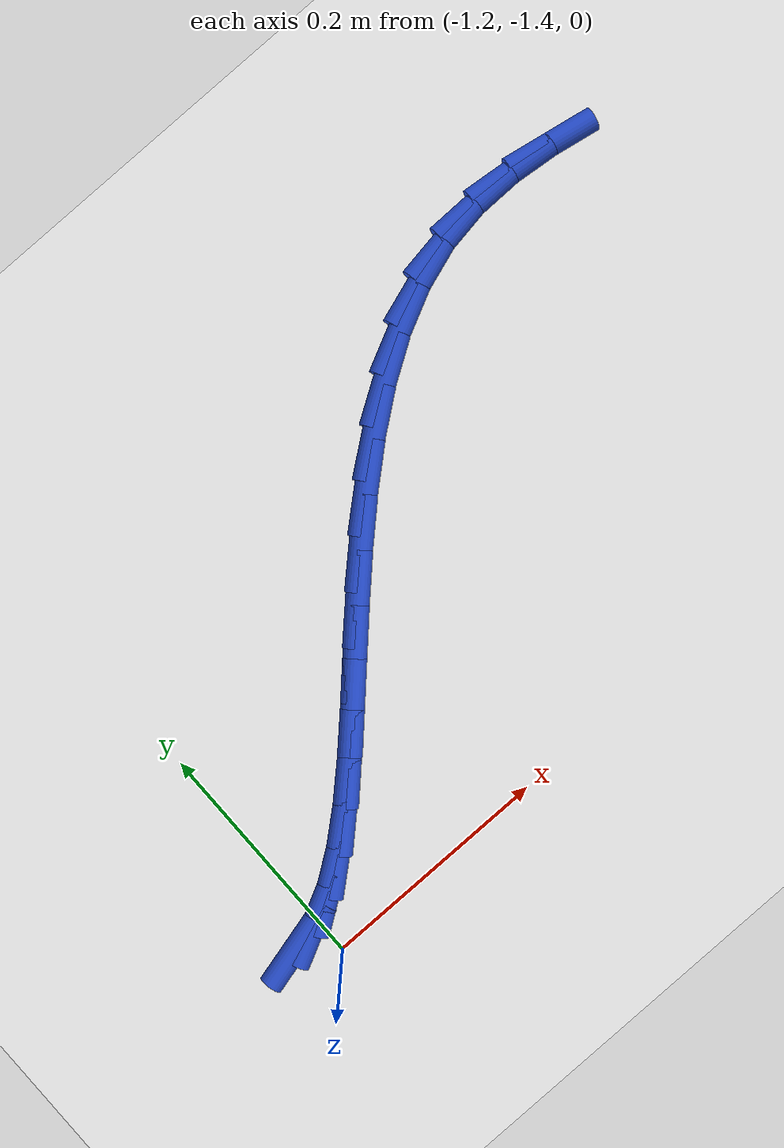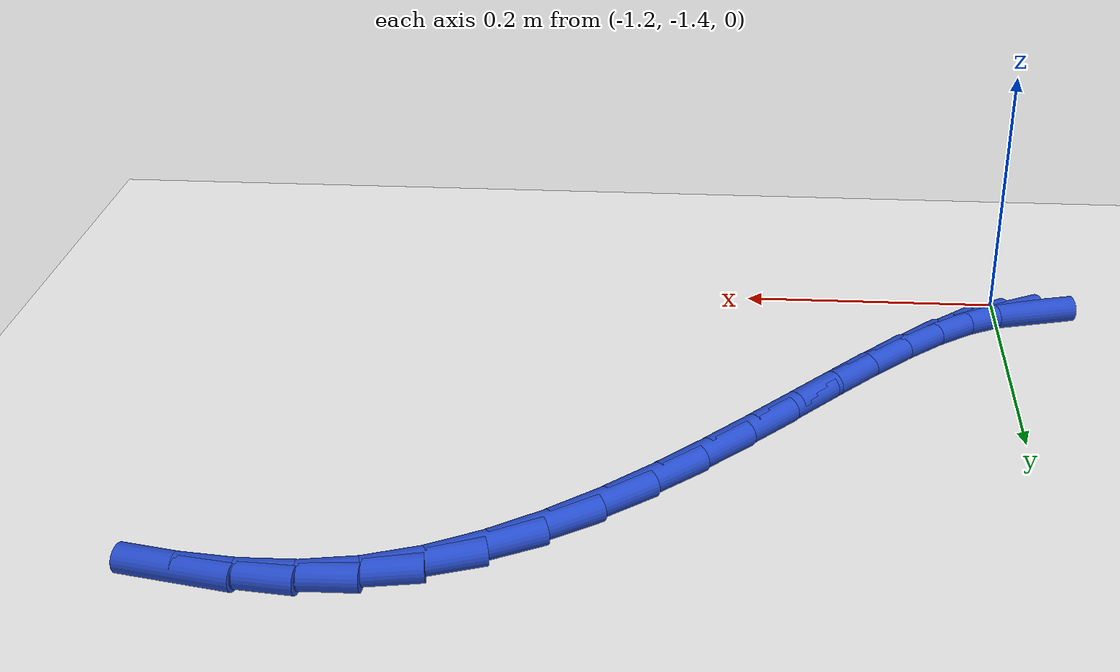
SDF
<sdf version="1.6">
 <world name="default">
  <model name="ground_plane">
   <static>1</static>
   <link name="link">
    <collision name="collision">
     <geometry><plane><normal>0 0 1</normal><size>100 100</size></plane></geometry>
     <surface><friction><ode><mu>100</mu><mu2>50</mu2></ode></friction></surface>
    </collision>
    <visual name="visual">
     <cast_shadows>0</cast_shadows>
     <geometry><plane><normal>0 0 1</normal><size>100 100</size></plane></geometry>
     <material>
      <script><uri>file://media/materials/scripts/gazebo.material</uri><name>Gazebo/WhiteGlow</name></script>
     </material>
    </visual>
   </link>
  </model>
  <model name="line">
   <link name="link_163">
    <pose>-1.2224894369334516 -1.3725179280706419 0.01 0 1.57 0.25270138778421414</pose>
    <collision name="collision">
     <geometry><cylinder><radius>0.01</radius><length>0.08</length></cylinder></geometry>
    </collision>
    <visual name="visual">
     <material>
      <script><name>Gazebo/Blue</name><uri>file://media/materials/scripts/gazebo.material</uri></script>
     </material>
     <geometry><cylinder><radius>0.01</radius><length>0.08</length></cylinder></geometry>
    </visual>
   </link>
   <link name="link_164">
    <pose>-1.1984580679133814 -1.3663125135648566 0.01 0 1.57 0.4697316657300928</pose>
    <collision name="collision">
     <geometry><cylinder><radius>0.01</radius><length>0.08</length></cylinder></geometry>
    </collision>
    <visual name="visual">
     <material>
      <script><name>Gazebo/Blue</name><uri>file://media/materials/scripts/gazebo.material</uri></script>
     </material>
     <geometry><cylinder><radius>0.01</radius><length>0.08</length></cylinder></geometry>
    </visual>
   </link>
   <link name="link_165">
    <pose>-1.173454476284148 -1.3536199810830771 0.01 0 1.57 0.6124845740880773</pose>
    <collision name="collision">
     <geometry><cylinder><radius>0.01</radius><length>0.08</length></cylinder></geometry>
    </collision>
    <visual name="visual">
     <material>
      <script><name>Gazebo/Blue</name><uri>file://media/materials/scripts/gazebo.material</uri></script>
     </material>
     <geometry><cylinder><radius>0.01</radius><length>0.08</length></cylinder></geometry>
    </visual>
   </link>
   <link name="link_166">
    <pose>-1.147478849339577 -1.335368893584501 0.01 0 1.57 0.7039708735063501</pose>
    <collision name="collision">
     <geometry><cylinder><radius>0.01</radius><length>0.08</length></cylinder></geometry>
    </collision>
    <visual name="visual">
     <material>
      <script><name>Gazebo/Blue</name><uri>file://media/materials/scripts/gazebo.material</uri></script>
     </material>
     <geometry><cylinder><radius>0.01</radius><length>0.08</length></cylinder></geometry>
    </visual>
   </link>
   <link name="link_167">
    <pose>-1.1205313743734928 -1.3124878140283245 0.01 0 1.57 0.7608785515708159</pose>
    <collision name="collision">
     <geometry><cylinder><radius>0.01</radius><length>0.08</length></cylinder></geometry>
    </collision>
    <visual name="visual">
     <material>
      <script><name>Gazebo/Blue</name><uri>file://media/materials/scripts/gazebo.material</uri></script>
     </material>
     <geometry><cylinder><radius>0.01</radius><length>0.08</length></cylinder></geometry>
    </visual>
   </link>
   <link name="link_168">
    <pose>-1.0926122386797203 -1.2859053053737455 0.01 0 1.57 0.7933773539155227</pose>
    <collision name="collision">
     <geometry><cylinder><radius>0.01</radius><length>0.08</length></cylinder></geometry>
    </collision>
    <visual name="visual">
     <material>
      <script><name>Gazebo/Blue</name><uri>file://media/materials/scripts/gazebo.material</uri></script>
     </material>
     <geometry><cylinder><radius>0.01</radius><length>0.08</length></cylinder></geometry>
    </visual>
   </link>
   <link name="link_169">
    <pose>-1.0637216295520837 -1.2565499305799588 0.01 0 1.57 0.8073034084556909</pose>
    <collision name="collision">
     <geometry><cylinder><radius>0.01</radius><length>0.08</length></cylinder></geometry>
    </collision>
    <visual name="visual">
     <material>
      <script><name>Gazebo/Blue</name><uri>file://media/materials/scripts/gazebo.material</uri></script>
     </material>
     <geometry><cylinder><radius>0.01</radius><length>0.08</length></cylinder></geometry>
    </visual>
   </link>
   <link name="link_170">
    <pose>-1.0338597342844094 -1.225350252606165 0.01 0 1.57 0.805767965545105</pose>
    <collision name="collision">
     <geometry><cylinder><radius>0.01</radius><length>0.08</length></cylinder></geometry>
    </collision>
    <visual name="visual">
     <material>
      <script><name>Gazebo/Blue</name><uri>file://media/materials/scripts/gazebo.material</uri></script>
     </material>
     <geometry><cylinder><radius>0.01</radius><length>0.08</length></cylinder></geometry>
    </visual>
   </link>
   <link name="link_171">
    <pose>-1.003026740170521 -1.1932348344115584 0.01 0 1.57 0.790071985462082</pose>
    <collision name="collision">
     <geometry><cylinder><radius>0.01</radius><length>0.08</length></cylinder></geometry>
    </collision>
    <visual name="visual">
     <material>
      <script><name>Gazebo/Blue</name><uri>file://media/materials/scripts/gazebo.material</uri></script>
     </material>
     <geometry><cylinder><radius>0.01</radius><length>0.08</length></cylinder></geometry>
    </visual>
   </link>
   <link name="link_172">
    <pose>-0.971222834504244 -1.1611322389553373 0.01 0 1.57 0.7601685296400821</pose>
    <collision name="collision">
     <geometry><cylinder><radius>0.01</radius><length>0.08</length></cylinder></geometry>
    </collision>
    <visual name="visual">
     <material>
      <script><name>Gazebo/Blue</name><uri>file://media/materials/scripts/gazebo.material</uri></script>
     </material>
     <geometry><cylinder><radius>0.01</radius><length>0.08</length></cylinder></geometry>
    </visual>
   </link>
   <link name="link_173">
    <pose>-0.9384482045794017 -1.1299710291966967 0.01 0 1.57 0.7148593283510855</pose>
    <collision name="collision">
     <geometry><cylinder><radius>0.01</radius><length>0.08</length></cylinder></geometry>
    </collision>
    <visual name="visual">
     <material>
      <script><name>Gazebo/Blue</name><uri>file://media/materials/scripts/gazebo.material</uri></script>
     </material>
     <geometry><cylinder><radius>0.01</radius><length>0.08</length></cylinder></geometry>
    </visual>
   </link>
   <link name="link_174">
    <pose>-0.9047030376898213 -1.1006797680948364 0.01 0 1.57 0.6518568987162144</pose>
    <collision name="collision">
     <geometry><cylinder><radius>0.01</radius><length>0.08</length></cylinder></geometry>
    </collision>
    <visual name="visual">
     <material>
      <script><name>Gazebo/Blue</name><uri>file://media/materials/scripts/gazebo.material</uri></script>
     </material>
     <geometry><cylinder><radius>0.01</radius><length>0.08</length></cylinder></geometry>
    </visual>
   </link>
   <link name="link_175">
    <pose>-0.8699875211293261 -1.074187018608951 0.01 0 1.57 0.56785744495001</pose>
    <collision name="collision">
     <geometry><cylinder><radius>0.01</radius><length>0.08</length></cylinder></geometry>
    </collision>
    <visual name="visual">
     <material>
      <script><name>Gazebo/Blue</name><uri>file://media/materials/scripts/gazebo.material</uri></script>
     </material>
     <geometry><cylinder><radius>0.01</radius><length>0.08</length></cylinder></geometry>
    </visual>
   </link>
   <link name="link_176">
    <pose>-0.8343018421917413 -1.0514213436982391 0.01 0 1.57 0.4588831202456407</pose>
    <collision name="collision">
     <geometry><cylinder><radius>0.01</radius><length>0.08</length></cylinder></geometry>
    </collision>
    <visual name="visual">
     <material>
      <script><name>Gazebo/Blue</name><uri>file://media/materials/scripts/gazebo.material</uri></script>
     </material>
     <geometry><cylinder><radius>0.01</radius><length>0.08</length></cylinder></geometry>
    </visual>
   </link>
   <link name="link_177">
    <pose>-0.7976461881708918 -1.0333113063218973 0.01 0 1.57 0.321368334834041</pose>
    <collision name="collision">
     <geometry><cylinder><radius>0.01</radius><length>0.08</length></cylinder></geometry>
    </collision>
    <visual name="visual">
     <material>
      <script><name>Gazebo/Blue</name><uri>file://media/materials/scripts/gazebo.material</uri></script>
     </material>
     <geometry><cylinder><radius>0.01</radius><length>0.08</length></cylinder></geometry>
    </visual>
   </link>
   <link name="link_178">
    <pose>-0.7600207463606014 -1.0207854694391214 0.01 0 1.57 0.15969448199172362</pose>
    <collision name="collision">
     <geometry><cylinder><radius>0.01</radius><length>0.08</length></cylinder></geometry>
    </collision>
    <visual name="visual">
     <material>
      <script><name>Gazebo/Blue</name><uri>file://media/materials/scripts/gazebo.material</uri></script>
     </material>
     <geometry><cylinder><radius>0.01</radius><length>0.08</length></cylinder></geometry>
    </visual>
   </link>
   <link name="link_179">
    <pose>-0.7214618595033849 -1.0145749437120626 0.01 0 1.57 0.013839317032656714</pose>
    <collision name="collision">
     <geometry><cylinder><radius>0.01</radius><length>0.08</length></cylinder></geometry>
    </collision>
    <visual name="visual">
     <material>
      <script><name>Gazebo/Blue</name><uri>file://media/materials/scripts/gazebo.material</uri></script>
     </material>
     <geometry><cylinder><radius>0.01</radius><length>0.08</length></cylinder></geometry>
    </visual>
   </link>
   <link name="link_180">
    <pose>-0.6822582837898103 -1.0140323583586464 0.01 0 1.57 -0.09829361946667678</pose>
    <collision name="collision">
     <geometry><cylinder><radius>0.01</radius><length>0.08</length></cylinder></geometry>
    </collision>
    <visual name="visual">
     <material>
      <script><name>Gazebo/Blue</name><uri>file://media/materials/scripts/gazebo.material</uri></script>
     </material>
     <geometry><cylinder><radius>0.01</radius><length>0.08</length></cylinder></geometry>
    </visual>
   </link>
   <link name="link_181">
    <pose>-0.6428063661719021 -1.0179227674522089 0.01 0 1.57 -0.17837987889107146</pose>
    <collision name="collision">
     <geometry><cylinder><radius>0.01</radius><length>0.08</length></cylinder></geometry>
    </collision>
    <visual name="visual">
     <material>
      <script><name>Gazebo/Blue</name><uri>file://media/materials/scripts/gazebo.material</uri></script>
     </material>
     <geometry><cylinder><radius>0.01</radius><length>0.08</length></cylinder></geometry>
    </visual>
   </link>
  </model>
 </world>
</sdf>
